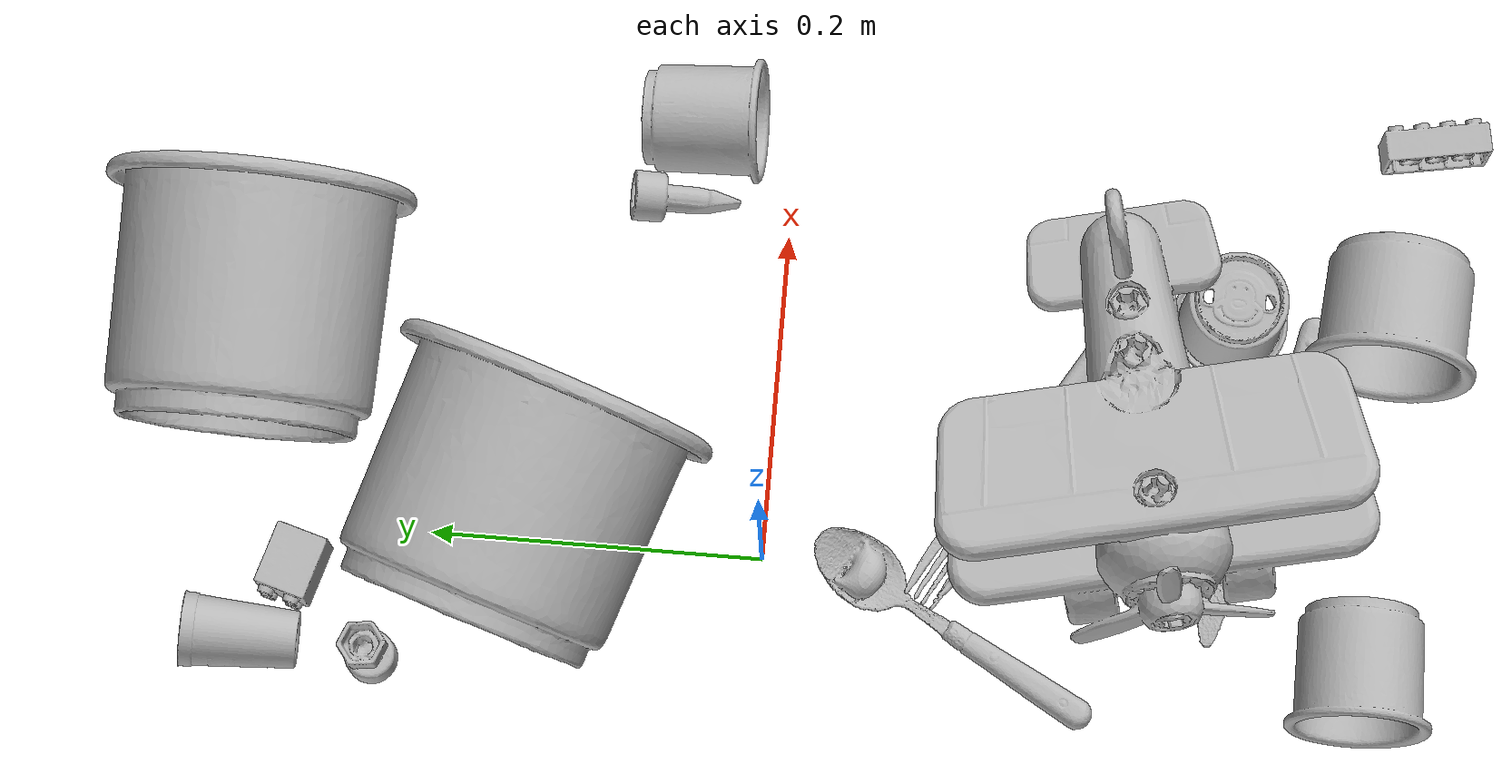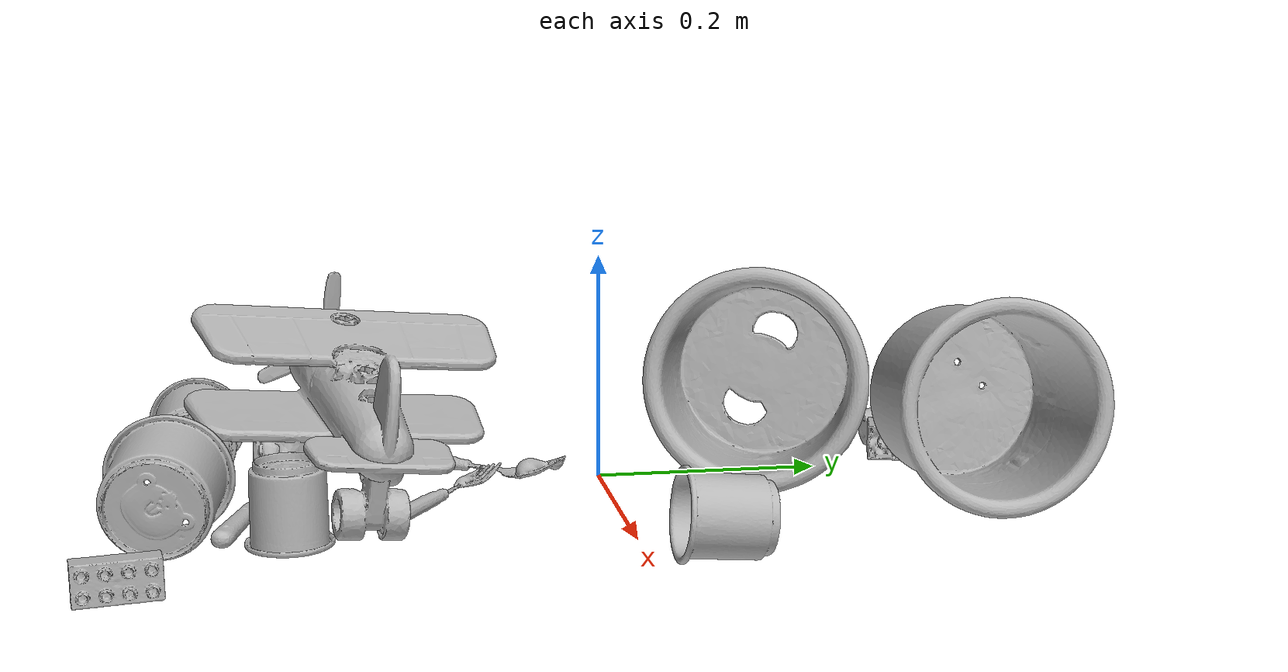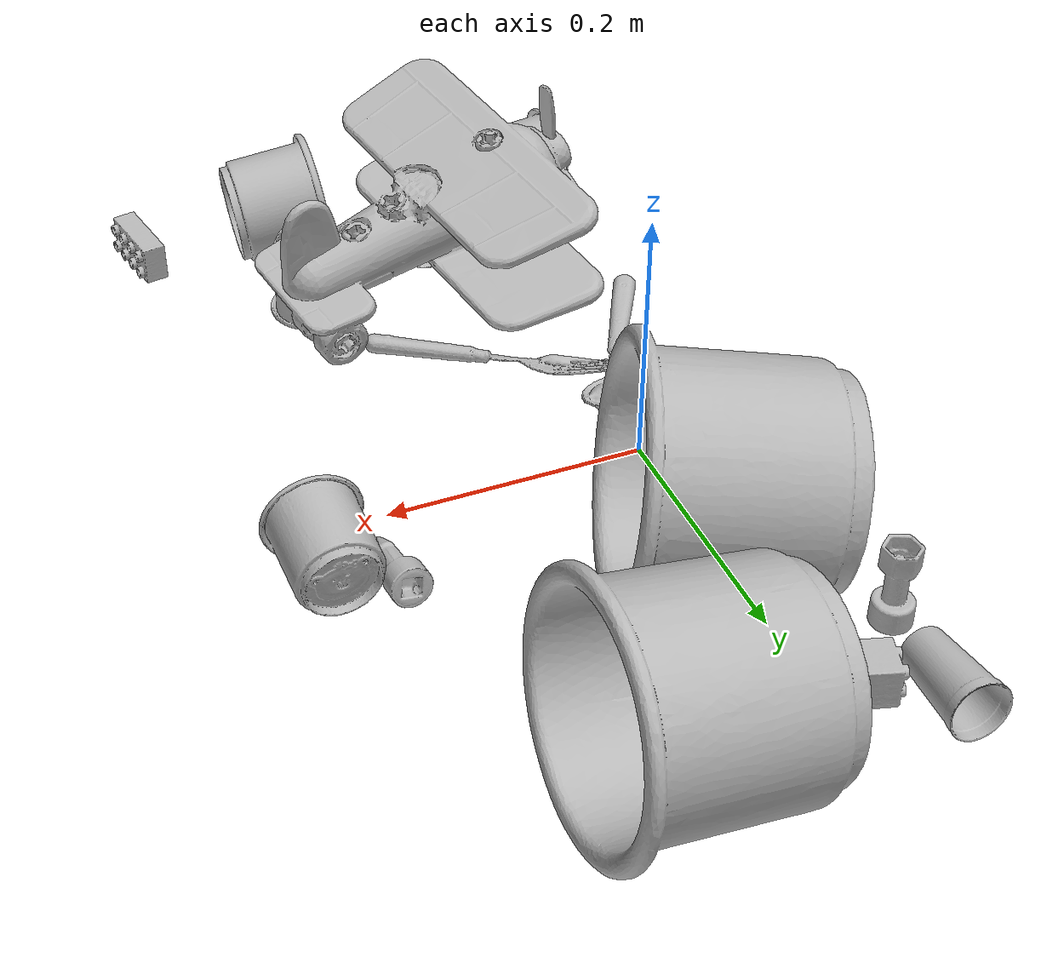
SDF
<sdf version="1.4">
  <world name="default">
    <light name="light1" type="point">
      <pose>0 0 1 0 0 0</pose>
      <diffuse>3 3 3 1</diffuse>
      <specular>3 3 3 1</specular>
    </light>
    <light name="light2" type="point">
      <pose>0 0.5 2 0 0 0</pose>
      <diffuse>1 1 1 1</diffuse>
      <specular>1 1 1 1</specular>
    </light>
    <light name="light3" type="point">
      <pose>0 0.5 2 0 0 0</pose>
      <diffuse>3 3 3 1</diffuse>
      <specular>3 3 3 1</specular>
    </light>
    <scene>
      <ambient>0.7 0.7 0.7</ambient>
    </scene>
    <model name="cup1">
      <link name="link_cup1">
        <collision name="default">
          <geometry>
            <mesh>
              <uri>model://d_cups/collision_meshes/collision.obj</uri>
              <scale>1.0 1.0 1.0</scale>
            </mesh>
          </geometry>
          <surface>
            <friction>
              <ode>
                <mu>0.5</mu>
                <mu2>0.5</mu2>
              </ode>
            </friction>
          <contact>
        <ode>
            <max_vel>0</max_vel>
            <min_depth>0.0001</min_depth>
            <kp>1e8</kp>
        </ode>
    </contact></surface>
        </collision>
        <visual name="default">
          <geometry>
            <mesh>
              <uri>model://d_cups/visual_meshes/visual.dae</uri>
              <scale>1.0 1.0 1.0</scale>
            </mesh>
          </geometry>
        </visual>
        <inertial>
          <mass>0.02583918906748295</mass>
          <pose>0.0008068039314821362 0.001911739120259881 -0.0022666507866233587 0.24011637128749466 -0.2471028358176743 0.5942765290496752</pose>
          <inertia>
            <ixx>2.1633481e-05</ixx>
            <iyy>2.1570875e-05</iyy>
            <izz>1.9581978e-05</izz>
            <ixy>0</ixy>
            <ixz>0</ixz>
            <iyz>0</iyz>
          </inertia>
        </inertial>
      </link>
      <pose>0.16907520592212677 -0.2715400755405426 0.03448902815580368 3.141592652633738 -1.2007546644958946e-07 -1.020684870060681</pose>
    </model>
    <model name="silverware1">
      <link name="link_silverware1">
        <collision name="default">
          <geometry>
            <mesh>
              <uri>model://fork/collision_meshes/collision.obj</uri>
              <scale>1.0 1.0 1.0</scale>
            </mesh>
          </geometry>
          <surface>
            <friction>
              <ode>
                <mu>0.5</mu>
                <mu2>0.5</mu2>
              </ode>
            </friction>
          <contact>
        <ode>
            <max_vel>0</max_vel>
            <min_depth>0.0001</min_depth>
            <kp>1e8</kp>
        </ode>
    </contact></surface>
        </collision>
        <visual name="default">
          <geometry>
            <mesh>
              <uri>model://fork/visual_meshes/visual.dae</uri>
              <scale>1.0 1.0 1.0</scale>
            </mesh>
          </geometry>
        </visual>
        <inertial>
          <mass>0.019409121945500374</mass>
          <pose>-0.02957003004848957 0.00046588227269239724 0.0003218860365450382 -0.013551247621251511 -0.010977829980421018 0.014453895491116085</pose>
          <inertia>
            <ixx>6.8039935e-07</ixx>
            <iyy>5.0671635e-05</iyy>
            <izz>5.097597e-05</izz>
            <ixy>0</ixy>
            <ixz>0</ixz>
            <iyz>0</iyz>
          </inertia>
        </inertial>
      </link>
      <pose>0.06513487547636032 -0.145802304148674 0.005705482792109251 -0.18103280632619997 0.024876740653512853 2.578745462031873</pose>
    </model>
    <model name="cup2">
      <link name="link_cup2">
        <collision name="default">
          <geometry>
            <mesh>
              <uri>model://e_cups/collision_meshes/collision.obj</uri>
              <scale>1.0 1.0 1.0</scale>
            </mesh>
          </geometry>
          <surface>
            <friction>
              <ode>
                <mu>0.5</mu>
                <mu2>0.5</mu2>
              </ode>
            </friction>
          <contact>
        <ode>
            <max_vel>0</max_vel>
            <min_depth>0.0001</min_depth>
            <kp>1e8</kp>
        </ode>
    </contact></surface>
        </collision>
        <visual name="default">
          <geometry>
            <mesh>
              <uri>model://e_cups/visual_meshes/visual.dae</uri>
              <scale>1.0 1.0 1.0</scale>
            </mesh>
          </geometry>
        </visual>
        <inertial>
          <mass>0.044056184589862823</mass>
          <pose>0.0011355748865753412 0.0028797839768230915 -0.0038829699624329805 0.6952404811842238 0.0876797234541652 -0.5235249298074676</pose>
          <inertia>
            <ixx>3.8846523e-05</ixx>
            <iyy>4.060018e-05</iyy>
            <izz>3.714177e-05</izz>
            <ixy>0</ixy>
            <ixz>0</ixz>
            <iyz>0</iyz>
          </inertia>
        </inertial>
      </link>
      <pose>0.2614218294620514 0.05643966794013977 0.034922659397125244 -1.4793264164174156 0.1848373350025066 -3.105291765258073</pose>
    </model>
    <model name="silverware2">
      <link name="link_silverware2">
        <collision name="default">
          <geometry>
            <mesh>
              <uri>model://knife/collision_meshes/collision.obj</uri>
              <scale>1.0 1.0 1.0</scale>
            </mesh>
          </geometry>
          <surface>
            <friction>
              <ode>
                <mu>0.5</mu>
                <mu2>0.5</mu2>
              </ode>
            </friction>
          <contact>
        <ode>
            <max_vel>0</max_vel>
            <min_depth>0.0001</min_depth>
            <kp>1e8</kp>
        </ode>
    </contact></surface>
        </collision>
        <visual name="default">
          <geometry>
            <mesh>
              <uri>model://knife/visual_meshes/visual.dae</uri>
              <scale>1.0 1.0 1.0</scale>
            </mesh>
          </geometry>
        </visual>
        <inertial>
          <mass>0.018338654190301895</mass>
          <pose>-0.02378525212407112 0.00152751209679991 5.062017953605391e-05 0.07305878484845407 0.017248414361503102 -0.007409825003193847</pose>
          <inertia>
            <ixx>5.2052525e-07</ixx>
            <iyy>7.045415e-05</iyy>
            <izz>7.062178e-05</izz>
            <ixy>0</ixy>
            <ixz>0</ixz>
            <iyz>0</iyz>
          </inertia>
        </inertial>
      </link>
      <pose>0.071720190346241 -0.29501083493232727 0.007916992530226707 0.0777409759165393 -0.013647070628784818 2.859521363433464</pose>
    </model>
    <model name="cup3">
      <link name="link_cup3">
        <collision name="default">
          <geometry>
            <mesh>
              <uri>model://g_cups/collision_meshes/collision.obj</uri>
              <scale>1.0 1.0 1.0</scale>
            </mesh>
          </geometry>
          <surface>
            <friction>
              <ode>
                <mu>0.5</mu>
                <mu2>0.5</mu2>
              </ode>
            </friction>
          <contact>
        <ode>
            <max_vel>0</max_vel>
            <min_depth>0.0001</min_depth>
            <kp>1e8</kp>
        </ode>
    </contact></surface>
        </collision>
        <visual name="default">
          <geometry>
            <mesh>
              <uri>model://g_cups/visual_meshes/visual.dae</uri>
              <scale>1.0 1.0 1.0</scale>
            </mesh>
          </geometry>
        </visual>
        <inertial>
          <mass>0.07798270881175995</mass>
          <pose>-0.0007946274126879871 -4.206407902529463e-05 -0.0021329382434487343 -0.21383467808934026 -0.31409923984197585 0.31123390815877217</pose>
          <inertia>
            <ixx>9.102333e-05</ixx>
            <iyy>9.0713715e-05</iyy>
            <izz>9.428446e-05</izz>
            <ixy>0</ixy>
            <ixz>0</ixz>
            <iyz>0</iyz>
          </inertia>
        </inertial>
      </link>
      <pose>-0.04387887194752693 -0.35770583152770996 0.040024954825639725 -1.4662814608816588 0.2372272246736677 1.6008158487130821</pose>
    </model>
    <model name="silverware3">
      <link name="link_silverware3">
        <collision name="default">
          <geometry>
            <mesh>
              <uri>model://spoon/collision_meshes/collision.obj</uri>
              <scale>1.0 1.0 1.0</scale>
            </mesh>
          </geometry>
          <surface>
            <friction>
              <ode>
                <mu>0.5</mu>
                <mu2>0.5</mu2>
              </ode>
            </friction>
          <contact>
        <ode>
            <max_vel>0</max_vel>
            <min_depth>0.0001</min_depth>
            <kp>1e8</kp>
        </ode>
    </contact></surface>
        </collision>
        <visual name="default">
          <geometry>
            <mesh>
              <uri>model://spoon/visual_meshes/visual.dae</uri>
              <scale>1.0 1.0 1.0</scale>
            </mesh>
          </geometry>
        </visual>
        <inertial>
          <mass>0.03767607361078262</mass>
          <pose>-0.005526314023882151 -0.00160341733135283 -0.0007271650829352438 0.035216427360727776 -0.03906582911385382 0.006150613897789847</pose>
          <inertia>
            <ixx>2.095604e-06</ixx>
            <iyy>0.00014335623</iyy>
            <izz>0.00014438969</izz>
            <ixy>0</ixy>
            <ixz>0</ixz>
            <iyz>0</iyz>
          </inertia>
        </inertial>
      </link>
      <pose>-0.03619524464011192 -0.11556249111890793 0.008385262452065945 0.006729885324774243 0.02689299177925808 1.053560233242394</pose>
    </model>
    <model name="cup4">
      <link name="link_cup4">
        <collision name="default">
          <geometry>
            <mesh>
              <uri>model://i_cups/collision_meshes/collision.obj</uri>
              <scale>2.0 2.0 2.0</scale>
            </mesh>
          </geometry>
          <surface>
            <friction>
              <ode>
                <mu>0.5</mu>
                <mu2>0.5</mu2>
              </ode>
            </friction>
          <contact>
        <ode>
            <max_vel>0</max_vel>
            <min_depth>0.0001</min_depth>
            <kp>1e8</kp>
        </ode>
    </contact></surface>
        </collision>
        <visual name="default">
          <geometry>
            <mesh>
              <uri>model://i_cups/visual_meshes/visual.dae</uri>
              <scale>2.0 2.0 2.0</scale>
            </mesh>
          </geometry>
        </visual>
        <inertial>
          <mass>0.5538490414619446</mass>
          <pose>0.00022480632469523698 0.00033594807609915733 -0.0017158057307824492 -0.028982964625507153 -0.039873324075769 -0.3459146585522926</pose>
          <inertia>
            <ixx>0.003067248</ixx>
            <iyy>0.003094273</iyy>
            <izz>0.0034281453</izz>
            <ixy>0</ixy>
            <ixz>0</ixz>
            <iyz>0</iyz>
          </inertia>
        </inertial>
      </link>
      <pose>0.007984046824276447 0.1468440592288971 0.08984310925006866 1.3860263061848888 -0.8801886780113397 1.394121928464555</pose>
    </model>
    <model name="cup41">
      <link name="link_cup41">
        <collision name="default">
          <geometry>
            <mesh>
              <uri>model://cup_small/collision_meshes/collision.obj</uri>
              <scale>1.0 1.0 1.0</scale>
            </mesh>
          </geometry>
          <surface>
            <friction>
              <ode>
                <mu>0.5</mu>
                <mu2>0.5</mu2>
              </ode>
            </friction>
          <contact>
        <ode>
            <max_vel>0</max_vel>
            <min_depth>0.0001</min_depth>
            <kp>1e8</kp>
        </ode>
    </contact></surface>
        </collision>
        <visual name="default">
          <geometry>
            <mesh>
              <uri>model://cup_small/visual_meshes/visual.dae</uri>
              <scale>1.0 1.0 1.0</scale>
            </mesh>
          </geometry>
        </visual>
        <inertial>
          <mass>0.014494861476123333</mass>
          <pose>0.000104824714071583 -0.0003377838584128767 -0.010742826387286186 -0.01149312034772668 -0.015280288652376739 -0.5058210166411498</pose>
          <inertia>
            <ixx>8.534352e-06</ixx>
            <iyy>8.578376e-06</iyy>
            <izz>3.853286e-06</izz>
            <ixy>0</ixy>
            <ixz>0</ixz>
            <iyz>0</iyz>
          </inertia>
        </inertial>
      </link>
      <pose>-0.0733439177274704 0.3055420517921448 0.020058520138263702 -1.3748066983213028 -1.1113433179704038 -0.17422692431772704</pose>
    </model>
    <model name="cup5">
      <link name="link_cup5">
        <collision name="default">
          <geometry>
            <mesh>
              <uri>model://h_cups/collision_meshes/collision.obj</uri>
              <scale>2.0 2.0 2.0</scale>
            </mesh>
          </geometry>
          <surface>
            <friction>
              <ode>
                <mu>0.5</mu>
                <mu2>0.5</mu2>
              </ode>
            </friction>
          <contact>
        <ode>
            <max_vel>0</max_vel>
            <min_depth>0.0001</min_depth>
            <kp>1e8</kp>
        </ode>
    </contact></surface>
        </collision>
        <visual name="default">
          <geometry>
            <mesh>
              <uri>model://h_cups/visual_meshes/visual.dae</uri>
              <scale>2.0 2.0 2.0</scale>
            </mesh>
          </geometry>
        </visual>
        <inertial>
          <mass>0.5365790128707886</mass>
          <pose>-5.406028139987029e-05 0.00046037189895287156 -0.0036810787860304117 -0.02436222281077587 0.06545240855648493 0.12885003891433794</pose>
          <inertia>
            <ixx>0.002771868</ixx>
            <iyy>0.0027387904</iyy>
            <izz>0.0029069292</izz>
            <ixy>0</ixy>
            <ixz>0</ixz>
            <iyz>0</iyz>
          </inertia>
        </inertial>
      </link>
      <pose>0.11468362808227539 0.3121873438358307 0.08445390313863754 -1.42718098765817 0.7249920578785723 -1.4902236004196654</pose>
    </model>
    <model name="cup51">
      <link name="link_cup51">
        <collision name="default">
          <geometry>
            <mesh>
              <uri>model://j_cups/collision_meshes/collision.obj</uri>
              <scale>1.0 1.0 1.0</scale>
            </mesh>
          </geometry>
          <surface>
            <friction>
              <ode>
                <mu>0.5</mu>
                <mu2>0.5</mu2>
              </ode>
            </friction>
          <contact>
        <ode>
            <max_vel>0</max_vel>
            <min_depth>0.0001</min_depth>
            <kp>1e8</kp>
        </ode>
    </contact></surface>
        </collision>
        <visual name="default">
          <geometry>
            <mesh>
              <uri>model://j_cups/visual_meshes/visual.dae</uri>
              <scale>1.0 1.0 1.0</scale>
            </mesh>
          </geometry>
        </visual>
        <inertial>
          <mass>0.08643309026956558</mass>
          <pose>0.0006164878141134977 0.000539897009730339 -0.0013479007175192237 0.030303582878034346 0.03757999590477698 0.4386876701083768</pose>
          <inertia>
            <ixx>0.00012691108</ixx>
            <iyy>0.00012823076</iyy>
            <izz>0.00014630218</izz>
            <ixy>0</ixy>
            <ixz>0</ixz>
            <iyz>0</iyz>
          </inertia>
        </inertial>
      </link>
      <pose>0.17121490836143494 -0.36668604612350464 0.047231853008270264 -1.301202248204104 1.0855999883971186 1.7273330105689886</pose>
    </model>
    <model name="toy1">
      <link name="link_toy1">
        <collision name="default">
          <geometry>
            <mesh>
              <uri>model://f_lego_duplo/collision_meshes/collision.obj</uri>
              <scale>1.0 1.0 1.0</scale>
            </mesh>
          </geometry>
          <surface>
            <friction>
              <ode>
                <mu>0.5</mu>
                <mu2>0.5</mu2>
              </ode>
            </friction>
          <contact>
        <ode>
            <max_vel>0</max_vel>
            <min_depth>0.0001</min_depth>
            <kp>1e8</kp>
        </ode>
    </contact></surface>
        </collision>
        <visual name="default">
          <geometry>
            <mesh>
              <uri>model://f_lego_duplo/visual_meshes/visual.dae</uri>
              <scale>1.0 1.0 1.0</scale>
            </mesh>
          </geometry>
        </visual>
        <inertial>
          <mass>0.03726755082607269</mass>
          <pose>2.3694148694630712e-05 0.00013393144763540477 0.0018837880343198776 0.029838475432906467 -0.014425202105620092 -0.6756589304715467</pose>
          <inertia>
            <ixx>7.874838e-06</ixx>
            <iyy>7.944995e-06</iyy>
            <izz>6.8356926e-06</izz>
            <ixy>0</ixy>
            <ixz>0</ixz>
            <iyz>0</iyz>
          </inertia>
        </inertial>
      </link>
      <pose>-0.03033624030649662 0.27922794222831726 0.01650199294090271 -1.5707948342020879 1.9589849476710296e-06 1.2823978945475607</pose>
    </model>
    <model name="toy2">
      <link name="link_toy2">
        <collision name="default">
          <geometry>
            <mesh>
              <uri>model://a_toy_airplane/collision_meshes/collision.obj</uri>
              <scale>1.0 1.0 1.0</scale>
            </mesh>
          </geometry>
          <surface>
            <friction>
              <ode>
                <mu>0.5</mu>
                <mu2>0.5</mu2>
              </ode>
            </friction>
          <contact>
        <ode>
            <max_vel>0</max_vel>
            <min_depth>0.0001</min_depth>
            <kp>1e8</kp>
        </ode>
    </contact></surface>
        </collision>
        <visual name="default">
          <geometry>
            <mesh>
              <uri>model://a_toy_airplane/visual_meshes/visual.dae</uri>
              <scale>1.0 1.0 1.0</scale>
            </mesh>
          </geometry>
        </visual>
        <inertial>
          <mass>2.8230273723602295</mass>
          <pose>0.025165094062685966 -0.003707324154675007 -0.0011962448479607701 -0.012016973205606891 -0.14663498091084715 0.004149146833454428</pose>
          <inertia>
            <ixx>0.010251767</ixx>
            <iyy>0.014938904</iyy>
            <izz>0.017491622</izz>
            <ixy>0</ixy>
            <ixz>0</ixz>
            <iyz>0</iyz>
          </inertia>
        </inertial>
      </link>
      <pose>0.08949318528175354 -0.22097589075565338 0.09594838321208954 0.10082508909499907 -0.012107798976970705 -2.941268410072955</pose>
    </model>
    <model name="toy3">
      <link name="link_toy3">
        <collision name="default">
          <geometry>
            <mesh>
              <uri>model://e_toy_airplane/collision_meshes/collision.obj</uri>
              <scale>1.0 1.0 1.0</scale>
            </mesh>
          </geometry>
          <surface>
            <friction>
              <ode>
                <mu>0.5</mu>
                <mu2>0.5</mu2>
              </ode>
            </friction>
          <contact>
        <ode>
            <max_vel>0</max_vel>
            <min_depth>0.0001</min_depth>
            <kp>1e8</kp>
        </ode>
    </contact></surface>
        </collision>
        <visual name="default">
          <geometry>
            <mesh>
              <uri>model://e_toy_airplane/visual_meshes/visual.dae</uri>
              <scale>1.0 1.0 1.0</scale>
            </mesh>
          </geometry>
        </visual>
        <inertial>
          <mass>0.018226178362965584</mass>
          <pose>0.00011740501213353127 -2.2482903659692965e-05 -0.011187204159796238 0.005518473613481416 0.009228340672948143 0.1504115676354622</pose>
          <inertia>
            <ixx>5.5628384e-06</ixx>
            <iyy>5.505933e-06</iyy>
            <izz>1.6718515e-06</izz>
            <ixy>0</ixy>
            <ixz>0</ixz>
            <iyz>0</iyz>
          </inertia>
        </inertial>
      </link>
      <pose>0.21646298468112946 0.06419636309146881 0.012126198969781399 -1.752799635509952 -0.20244081516116663 -3.0649368639926373</pose>
    </model>
    <model name="toy4">
      <link name="link_toy4">
        <collision name="default">
          <geometry>
            <mesh>
              <uri>model://c_toy_airplane/collision_meshes/collision.obj</uri>
              <scale>1.0 1.0 1.0</scale>
            </mesh>
          </geometry>
          <surface>
            <friction>
              <ode>
                <mu>0.5</mu>
                <mu2>0.5</mu2>
              </ode>
            </friction>
          <contact>
        <ode>
            <max_vel>0</max_vel>
            <min_depth>0.0001</min_depth>
            <kp>1e8</kp>
        </ode>
    </contact></surface>
        </collision>
        <visual name="default">
          <geometry>
            <mesh>
              <uri>model://c_toy_airplane/visual_meshes/visual.dae</uri>
              <scale>1.0 1.0 1.0</scale>
            </mesh>
          </geometry>
        </visual>
        <inertial>
          <mass>0.025432955473661423</mass>
          <pose>-0.00023024249821901321 -4.429159048413567e-07 -0.006080531049519777 -0.006192114712999555 -0.016797950833505656 0.7654545807195076</pose>
          <inertia>
            <ixx>1.1678292e-05</ixx>
            <iyy>1.1645335e-05</iyy>
            <izz>2.7418316e-06</izz>
            <ixy>0</ixy>
            <ixz>0</ixz>
            <iyz>0</iyz>
          </inertia>
        </inertial>
      </link>
      <pose>-0.07906647771596909 0.22755621373653412 0.03351198881864548 -0.00010583944429910174 3.799784356033581e-05 -1.1677548366643653</pose>
    </model>
    <model name="toy5">
      <link name="link_toy5">
        <collision name="default">
          <geometry>
            <mesh>
              <uri>model://c_lego_duplo/collision_meshes/collision.obj</uri>
              <scale>1.0 1.0 1.0</scale>
            </mesh>
          </geometry>
          <surface>
            <friction>
              <ode>
                <mu>0.5</mu>
                <mu2>0.5</mu2>
              </ode>
            </friction>
          <contact>
        <ode>
            <max_vel>0</max_vel>
            <min_depth>0.0001</min_depth>
            <kp>1e8</kp>
        </ode>
    </contact></surface>
        </collision>
        <visual name="default">
          <geometry>
            <mesh>
              <uri>model://c_lego_duplo/visual_meshes/visual.dae</uri>
              <scale>1.0 1.0 1.0</scale>
            </mesh>
          </geometry>
        </visual>
        <inertial>
          <mass>0.03308485820889473</mass>
          <pose>0.00031645988929085433 0.00019464598153717816 0.0010453154100105166 -0.011520788894510418 0.005900092683279709 0.031100331745055027</pose>
          <inertia>
            <ixx>1.2731672e-05</ixx>
            <iyy>4.066954e-06</iyy>
            <izz>1.4878268e-05</izz>
            <ixy>0</ixy>
            <ixz>0</ixz>
            <iyz>0</iyz>
          </inertia>
        </inertial>
      </link>
      <pose>0.28695422410964966 -0.3885662853717804 0.016251735389232635 2.0776641271574245 -1.5447333609395284 1.2435750723731143</pose>
    </model>
  <physics type="ode">
      <max_contacts>50</max_contacts>
      <ode>
        <solver>
          <type>quick</type>
          <iters>75</iters>
        </solver>
        <constraints>
          <contact_max_correcting_vel>0</contact_max_correcting_vel>
          <contact_surface_layer>0</contact_surface_layer>
        </constraints>
      </ode>
    </physics></world>
</sdf>
